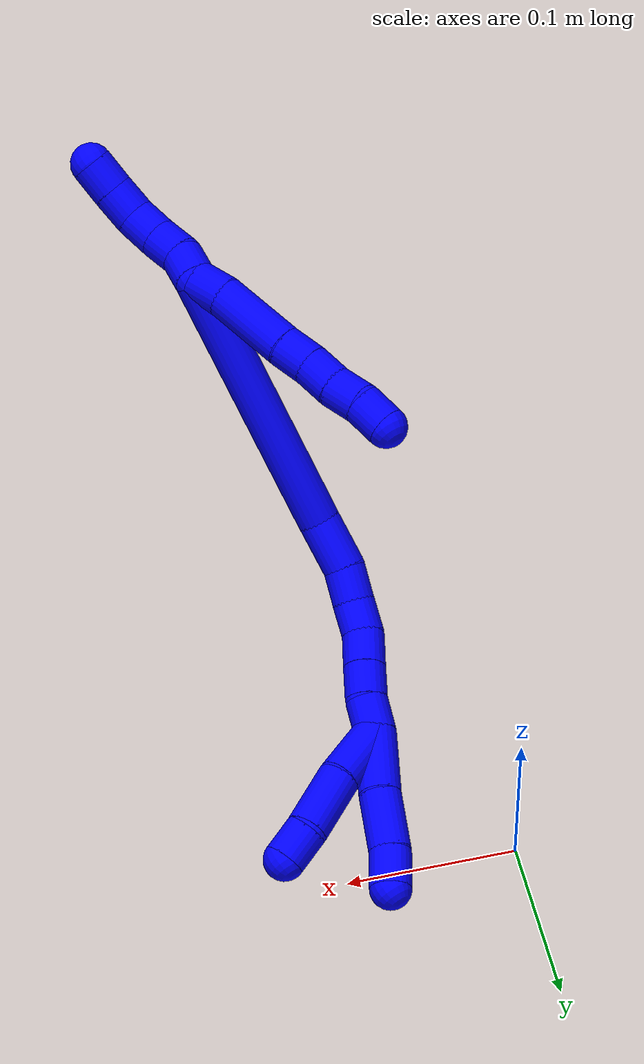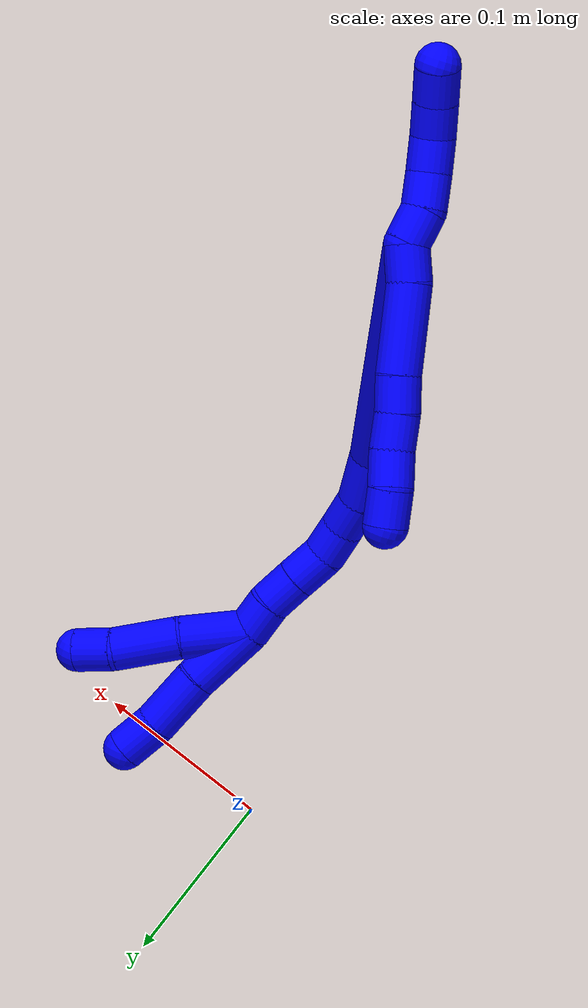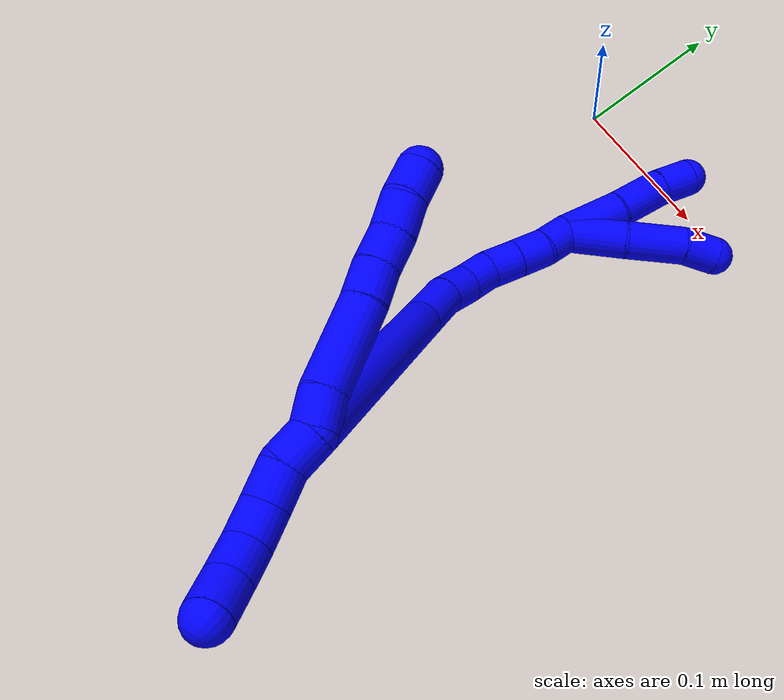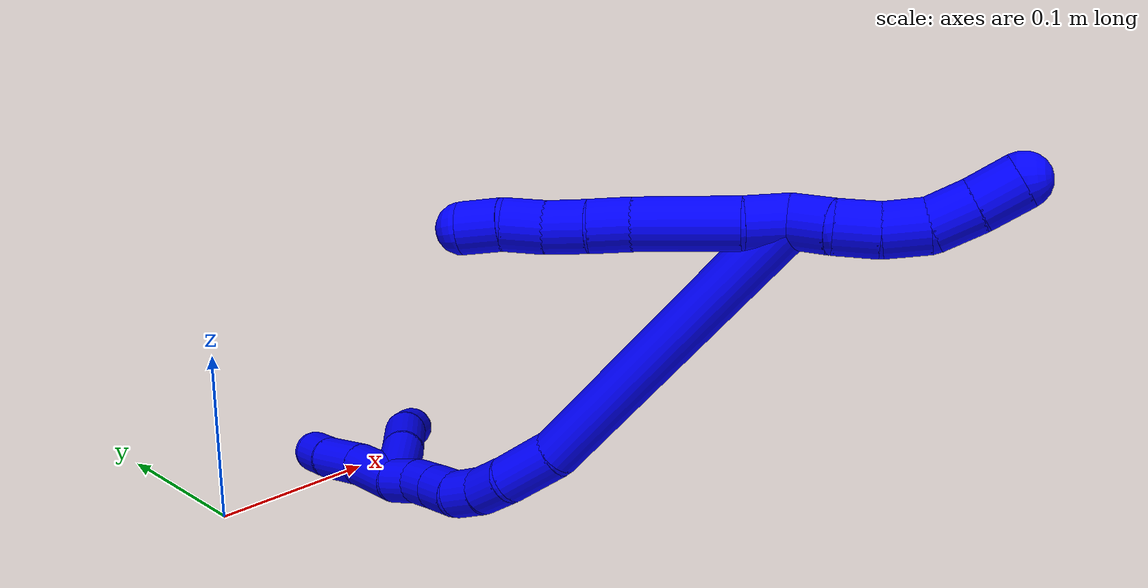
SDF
<sdf version="1.7">
 <world name="default">
  <model name="1">
   <static>0</static>
   <link name="1">
    <collision name="collision-cylinder-e_1_2_8">
     <pose>-0.000387 -0.004321 -0.009331 2.70786 -0.037593 -0.170226</pose>
     <geometry><cylinder><radius>0.0125</radius><length>0.02058</length></cylinder></geometry>
     <surface>
      <friction><ode><mu>1.16</mu><mu2>1.16</mu2><slip1>0</slip1><slip2>0</slip2></ode></friction>
      <contact><ode><kp>1e+06</kp><kd>1</kd><max_vel>0</max_vel><min_depth>0.001</min_depth></ode></contact>
     </surface>
    </collision>
    <visual name="visual-cylinder-e_1_2_8">
     <pose>-0.000387 -0.004321 -0.009331 2.70786 -0.037593 -0.170226</pose>
     <geometry><cylinder><radius>0.0125</radius><length>0.02058</length></cylinder></geometry>
     <material><ambient>0 0 1 1</ambient></material>
    </visual>
    <collision name="collision-cylinder-e_2_8_9">
     <pose>-0.003554 -0.014862 -0.042271 2.88403 -0.113416 -0.826299</pose>
     <geometry><cylinder><radius>0.0125</radius><length>0.049145</length></cylinder></geometry>
     <surface>
      <friction><ode><mu>1.16</mu><mu2>1.16</mu2><slip1>0</slip1><slip2>0</slip2></ode></friction>
      <contact><ode><kp>1e+06</kp><kd>1</kd><max_vel>0</max_vel><min_depth>0.001</min_depth></ode></contact>
     </surface>
    </collision>
    <visual name="visual-cylinder-e_2_8_9">
     <pose>-0.003554 -0.014862 -0.042271 2.88403 -0.113416 -0.826299</pose>
     <geometry><cylinder><radius>0.0125</radius><length>0.049145</length></cylinder></geometry>
     <material><ambient>0 0 1 1</ambient></material>
    </visual>
    <collision name="collision-cylinder-e_3_9_10">
     <pose>-0.006924 -0.024375 -0.075313 2.80562 -0.058863 -0.343774</pose>
     <geometry><cylinder><radius>0.0125</radius><length>0.020018</length></cylinder></geometry>
     <surface>
      <friction><ode><mu>1.16</mu><mu2>1.16</mu2><slip1>0</slip1><slip2>0</slip2></ode></friction>
      <contact><ode><kp>1e+06</kp><kd>1</kd><max_vel>0</max_vel><min_depth>0.001</min_depth></ode></contact>
     </surface>
    </collision>
    <visual name="visual-cylinder-e_3_9_10">
     <pose>-0.006924 -0.024375 -0.075313 2.80562 -0.058863 -0.343774</pose>
     <geometry><cylinder><radius>0.0125</radius><length>0.020018</length></cylinder></geometry>
     <material><ambient>0 0 1 1</ambient></material>
    </visual>
    <collision name="collision-cylinder-e_4_10_11">
     <pose>-0.008481 -0.029878 -0.094454 2.9179 -0.09689 -0.814994</pose>
     <geometry><cylinder><radius>0.0125</radius><length>0.020006</length></cylinder></geometry>
     <surface>
      <friction><ode><mu>1.16</mu><mu2>1.16</mu2><slip1>0</slip1><slip2>0</slip2></ode></friction>
      <contact><ode><kp>1e+06</kp><kd>1</kd><max_vel>0</max_vel><min_depth>0.001</min_depth></ode></contact>
     </surface>
    </collision>
    <visual name="visual-cylinder-e_4_10_11">
     <pose>-0.008481 -0.029878 -0.094454 2.9179 -0.09689 -0.814994</pose>
     <geometry><cylinder><radius>0.0125</radius><length>0.020006</length></cylinder></geometry>
     <material><ambient>0 0 1 1</ambient></material>
    </visual>
    <collision name="collision-cylinder-e_5_11_12">
     <pose>-0.011219 -0.035668 -0.113465 2.77414 -0.175794 -0.885659</pose>
     <geometry><cylinder><radius>0.0125</radius><length>0.02025</length></cylinder></geometry>
     <surface>
      <friction><ode><mu>1.16</mu><mu2>1.16</mu2><slip1>0</slip1><slip2>0</slip2></ode></friction>
      <contact><ode><kp>1e+06</kp><kd>1</kd><max_vel>0</max_vel><min_depth>0.001</min_depth></ode></contact>
     </surface>
    </collision>
    <visual name="visual-cylinder-e_5_11_12">
     <pose>-0.011219 -0.035668 -0.113465 2.77414 -0.175794 -0.885659</pose>
     <geometry><cylinder><radius>0.0125</radius><length>0.02025</length></cylinder></geometry>
     <material><ambient>0 0 1 1</ambient></material>
    </visual>
    <collision name="collision-cylinder-e_6_12_6">
     <pose>-0.01331 -0.041319 -0.132547 2.93293 -0.031981 -0.303097</pose>
     <geometry><cylinder><radius>0.0125</radius><length>0.020001</length></cylinder></geometry>
     <surface>
      <friction><ode><mu>1.16</mu><mu2>1.16</mu2><slip1>0</slip1><slip2>0</slip2></ode></friction>
      <contact><ode><kp>1e+06</kp><kd>1</kd><max_vel>0</max_vel><min_depth>0.001</min_depth></ode></contact>
     </surface>
    </collision>
    <visual name="visual-cylinder-e_6_12_6">
     <pose>-0.01331 -0.041319 -0.132547 2.93293 -0.031981 -0.303097</pose>
     <geometry><cylinder><radius>0.0125</radius><length>0.020001</length></cylinder></geometry>
     <material><ambient>0 0 1 1</ambient></material>
    </visual>
    <collision name="collision-cylinder-e_1_2_13">
     <pose>0.0027 -0.000665 0.009606 0.069071 0.273388 0.009505</pose>
     <geometry><cylinder><radius>0.0125</radius><length>0.02</length></cylinder></geometry>
     <surface>
      <friction><ode><mu>1.16</mu><mu2>1.16</mu2><slip1>0</slip1><slip2>0</slip2></ode></friction>
      <contact><ode><kp>1e+06</kp><kd>1</kd><max_vel>0</max_vel><min_depth>0.001</min_depth></ode></contact>
     </surface>
    </collision>
    <visual name="visual-cylinder-e_1_2_13">
     <pose>0.0027 -0.000665 0.009606 0.069071 0.273388 0.009505</pose>
     <geometry><cylinder><radius>0.0125</radius><length>0.02</length></cylinder></geometry>
     <material><ambient>0 0 1 1</ambient></material>
    </visual>
    <collision name="collision-cylinder-e_2_13_14">
     <pose>0.007314 0.001256 0.02868 -0.26656 0.192565 -0.025897</pose>
     <geometry><cylinder><radius>0.0125</radius><length>0.02</length></cylinder></geometry>
     <surface>
      <friction><ode><mu>1.16</mu><mu2>1.16</mu2><slip1>0</slip1><slip2>0</slip2></ode></friction>
      <contact><ode><kp>1e+06</kp><kd>1</kd><max_vel>0</max_vel><min_depth>0.001</min_depth></ode></contact>
     </surface>
    </collision>
    <visual name="visual-cylinder-e_2_13_14">
     <pose>0.007314 0.001256 0.02868 -0.26656 0.192565 -0.025897</pose>
     <geometry><cylinder><radius>0.0125</radius><length>0.02</length></cylinder></geometry>
     <material><ambient>0 0 1 1</ambient></material>
    </visual>
    <collision name="collision-cylinder-e_3_14_15">
     <pose>0.009433 0.006138 0.047879 -0.231707 0.02059 -0.002396</pose>
     <geometry><cylinder><radius>0.0125</radius><length>0.02</length></cylinder></geometry>
     <surface>
      <friction><ode><mu>1.16</mu><mu2>1.16</mu2><slip1>0</slip1><slip2>0</slip2></ode></friction>
      <contact><ode><kp>1e+06</kp><kd>1</kd><max_vel>0</max_vel><min_depth>0.001</min_depth></ode></contact>
     </surface>
    </collision>
    <visual name="visual-cylinder-e_3_14_15">
     <pose>0.009433 0.006138 0.047879 -0.231707 0.02059 -0.002396</pose>
     <geometry><cylinder><radius>0.0125</radius><length>0.02</length></cylinder></geometry>
     <material><ambient>0 0 1 1</ambient></material>
    </visual>
    <collision name="collision-cylinder-e_4_15_16">
     <pose>0.006567 0.009843 0.067021 -0.148635 -0.312245 0.023438</pose>
     <geometry><cylinder><radius>0.0125</radius><length>0.02</length></cylinder></geometry>
     <surface>
      <friction><ode><mu>1.16</mu><mu2>1.16</mu2><slip1>0</slip1><slip2>0</slip2></ode></friction>
      <contact><ode><kp>1e+06</kp><kd>1</kd><max_vel>0</max_vel><min_depth>0.001</min_depth></ode></contact>
     </surface>
    </collision>
    <visual name="visual-cylinder-e_4_15_16">
     <pose>0.006567 0.009843 0.067021 -0.148635 -0.312245 0.023438</pose>
     <geometry><cylinder><radius>0.0125</radius><length>0.02</length></cylinder></geometry>
     <material><ambient>0 0 1 1</ambient></material>
    </visual>
    <collision name="collision-cylinder-e_5_16_5">
     <pose>-0.000364 0.012395 0.085587 -0.124194 -0.39627 0.024965</pose>
     <geometry><cylinder><radius>0.0125</radius><length>0.02</length></cylinder></geometry>
     <surface>
      <friction><ode><mu>1.16</mu><mu2>1.16</mu2><slip1>0</slip1><slip2>0</slip2></ode></friction>
      <contact><ode><kp>1e+06</kp><kd>1</kd><max_vel>0</max_vel><min_depth>0.001</min_depth></ode></contact>
     </surface>
    </collision>
    <visual name="visual-cylinder-e_5_16_5">
     <pose>-0.000364 0.012395 0.085587 -0.124194 -0.39627 0.024965</pose>
     <geometry><cylinder><radius>0.0125</radius><length>0.02</length></cylinder></geometry>
     <material><ambient>0 0 1 1</ambient></material>
    </visual>
    <collision name="collision-cylinder-e_1_2_17">
     <pose>0.047799 0.005786 -0.066078 -3.05425 0.624426 -2.87246</pose>
     <geometry><cylinder><radius>0.0125</radius><length>0.163517</length></cylinder></geometry>
     <surface>
      <friction><ode><mu>1.16</mu><mu2>1.16</mu2><slip1>0</slip1><slip2>0</slip2></ode></friction>
      <contact><ode><kp>1e+06</kp><kd>1</kd><max_vel>0</max_vel><min_depth>0.001</min_depth></ode></contact>
     </surface>
    </collision>
    <visual name="visual-cylinder-e_1_2_17">
     <pose>0.047799 0.005786 -0.066078 -3.05425 0.624426 -2.87246</pose>
     <geometry><cylinder><radius>0.0125</radius><length>0.163517</length></cylinder></geometry>
     <material><ambient>0 0 1 1</ambient></material>
    </visual>
    <collision name="collision-cylinder-e_2_17_18">
     <pose>0.101491 0.012711 -0.146871 -3.06434 0.379887 -2.74489</pose>
     <geometry><cylinder><radius>0.0125</radius><length>0.031786</length></cylinder></geometry>
     <surface>
      <friction><ode><mu>1.16</mu><mu2>1.16</mu2><slip1>0</slip1><slip2>0</slip2></ode></friction>
      <contact><ode><kp>1e+06</kp><kd>1</kd><max_vel>0</max_vel><min_depth>0.001</min_depth></ode></contact>
     </surface>
    </collision>
    <visual name="visual-cylinder-e_2_17_18">
     <pose>0.101491 0.012711 -0.146871 -3.06434 0.379887 -2.74489</pose>
     <geometry><cylinder><radius>0.0125</radius><length>0.031786</length></cylinder></geometry>
     <material><ambient>0 0 1 1</ambient></material>
    </visual>
    <collision name="collision-cylinder-e_3_18_19">
     <pose>0.110189 0.017013 -0.171336 -2.82784 0.267187 -1.4086</pose>
     <geometry><cylinder><radius>0.0125</radius><length>0.021252</length></cylinder></geometry>
     <surface>
      <friction><ode><mu>1.16</mu><mu2>1.16</mu2><slip1>0</slip1><slip2>0</slip2></ode></friction>
      <contact><ode><kp>1e+06</kp><kd>1</kd><max_vel>0</max_vel><min_depth>0.001</min_depth></ode></contact>
     </surface>
    </collision>
    <visual name="visual-cylinder-e_3_18_19">
     <pose>0.110189 0.017013 -0.171336 -2.82784 0.267187 -1.4086</pose>
     <geometry><cylinder><radius>0.0125</radius><length>0.021252</length></cylinder></geometry>
     <material><ambient>0 0 1 1</ambient></material>
    </visual>
    <collision name="collision-cylinder-e_4_19_20">
     <pose>0.113787 0.022985 -0.190777 -2.85957 0.078376 -0.538974</pose>
     <geometry><cylinder><radius>0.0125</radius><length>0.020243</length></cylinder></geometry>
     <surface>
      <friction><ode><mu>1.16</mu><mu2>1.16</mu2><slip1>0</slip1><slip2>0</slip2></ode></friction>
      <contact><ode><kp>1e+06</kp><kd>1</kd><max_vel>0</max_vel><min_depth>0.001</min_depth></ode></contact>
     </surface>
    </collision>
    <visual name="visual-cylinder-e_4_19_20">
     <pose>0.113787 0.022985 -0.190777 -2.85957 0.078376 -0.538974</pose>
     <geometry><cylinder><radius>0.0125</radius><length>0.020243</length></cylinder></geometry>
     <material><ambient>0 0 1 1</ambient></material>
    </visual>
    <collision name="collision-cylinder-e_5_20_21">
     <pose>0.112733 0.030885 -0.209786 -2.64145 -0.172195 0.651741</pose>
     <geometry><cylinder><radius>0.0125</radius><length>0.021555</length></cylinder></geometry>
     <surface>
      <friction><ode><mu>1.16</mu><mu2>1.16</mu2><slip1>0</slip1><slip2>0</slip2></ode></friction>
      <contact><ode><kp>1e+06</kp><kd>1</kd><max_vel>0</max_vel><min_depth>0.001</min_depth></ode></contact>
     </surface>
    </collision>
    <visual name="visual-cylinder-e_5_20_21">
     <pose>0.112733 0.030885 -0.209786 -2.64145 -0.172195 0.651741</pose>
     <geometry><cylinder><radius>0.0125</radius><length>0.021555</length></cylinder></geometry>
     <material><ambient>0 0 1 1</ambient></material>
    </visual>
    <collision name="collision-cylinder-e_6_21_22">
     <pose>0.10926 0.040749 -0.228179 -2.65746 -0.157312 0.617992</pose>
     <geometry><cylinder><radius>0.0125</radius><length>0.020765</length></cylinder></geometry>
     <surface>
      <friction><ode><mu>1.16</mu><mu2>1.16</mu2><slip1>0</slip1><slip2>0</slip2></ode></friction>
      <contact><ode><kp>1e+06</kp><kd>1</kd><max_vel>0</max_vel><min_depth>0.001</min_depth></ode></contact>
     </surface>
    </collision>
    <visual name="visual-cylinder-e_6_21_22">
     <pose>0.10926 0.040749 -0.228179 -2.65746 -0.157312 0.617992</pose>
     <geometry><cylinder><radius>0.0125</radius><length>0.020765</length></cylinder></geometry>
     <material><ambient>0 0 1 1</ambient></material>
    </visual>
    <collision name="collision-cylinder-e_7_22_1">
     <pose>0.107223 0.048657 -0.247206 -2.83642 -0.039333 0.254426</pose>
     <geometry><cylinder><radius>0.0125</radius><length>0.020882</length></cylinder></geometry>
     <surface>
      <friction><ode><mu>1.16</mu><mu2>1.16</mu2><slip1>0</slip1><slip2>0</slip2></ode></friction>
      <contact><ode><kp>1e+06</kp><kd>1</kd><max_vel>0</max_vel><min_depth>0.001</min_depth></ode></contact>
     </surface>
    </collision>
    <visual name="visual-cylinder-e_7_22_1">
     <pose>0.107223 0.048657 -0.247206 -2.83642 -0.039333 0.254426</pose>
     <geometry><cylinder><radius>0.0125</radius><length>0.020882</length></cylinder></geometry>
     <material><ambient>0 0 1 1</ambient></material>
    </visual>
    <collision name="collision-cylinder-e_1_1_23">
     <pose>0.098907 0.068068 -0.264903 -2.01497 -0.413317 0.641013</pose>
     <geometry><cylinder><radius>0.0125</radius><length>0.039366</length></cylinder></geometry>
     <surface>
      <friction><ode><mu>1.16</mu><mu2>1.16</mu2><slip1>0</slip1><slip2>0</slip2></ode></friction>
      <contact><ode><kp>1e+06</kp><kd>1</kd><max_vel>0</max_vel><min_depth>0.001</min_depth></ode></contact>
     </surface>
    </collision>
    <visual name="visual-cylinder-e_1_1_23">
     <pose>0.098907 0.068068 -0.264903 -2.01497 -0.413317 0.641013</pose>
     <geometry><cylinder><radius>0.0125</radius><length>0.039366</length></cylinder></geometry>
     <material><ambient>0 0 1 1</ambient></material>
    </visual>
    <collision name="collision-cylinder-e_2_23_24">
     <pose>0.085524 0.100325 -0.28204 -2.10212 -0.287287 0.495172</pose>
     <geometry><cylinder><radius>0.0125</radius><length>0.038656</length></cylinder></geometry>
     <surface>
      <friction><ode><mu>1.16</mu><mu2>1.16</mu2><slip1>0</slip1><slip2>0</slip2></ode></friction>
      <contact><ode><kp>1e+06</kp><kd>1</kd><max_vel>0</max_vel><min_depth>0.001</min_depth></ode></contact>
     </surface>
    </collision>
    <visual name="visual-cylinder-e_2_23_24">
     <pose>0.085524 0.100325 -0.28204 -2.10212 -0.287287 0.495172</pose>
     <geometry><cylinder><radius>0.0125</radius><length>0.038656</length></cylinder></geometry>
     <material><ambient>0 0 1 1</ambient></material>
    </visual>
    <collision name="collision-cylinder-e_3_24_4">
     <pose>0.079054 0.126397 -0.295666 -1.96809 -0.090568 0.136104</pose>
     <geometry><cylinder><radius>0.0125</radius><length>0.021978</length></cylinder></geometry>
     <surface>
      <friction><ode><mu>1.16</mu><mu2>1.16</mu2><slip1>0</slip1><slip2>0</slip2></ode></friction>
      <contact><ode><kp>1e+06</kp><kd>1</kd><max_vel>0</max_vel><min_depth>0.001</min_depth></ode></contact>
     </surface>
    </collision>
    <visual name="visual-cylinder-e_3_24_4">
     <pose>0.079054 0.126397 -0.295666 -1.96809 -0.090568 0.136104</pose>
     <geometry><cylinder><radius>0.0125</radius><length>0.021978</length></cylinder></geometry>
     <material><ambient>0 0 1 1</ambient></material>
    </visual>
    <collision name="collision-cylinder-e_1_1_25">
     <pose>0.102034 0.060608 -0.274965 -2.68188 -0.236006 0.93792</pose>
     <geometry><cylinder><radius>0.0125</radius><length>0.040875</length></cylinder></geometry>
     <surface>
      <friction><ode><mu>1.16</mu><mu2>1.16</mu2><slip1>0</slip1><slip2>0</slip2></ode></friction>
      <contact><ode><kp>1e+06</kp><kd>1</kd><max_vel>0</max_vel><min_depth>0.001</min_depth></ode></contact>
     </surface>
    </collision>
    <visual name="visual-cylinder-e_1_1_25">
     <pose>0.102034 0.060608 -0.274965 -2.68188 -0.236006 0.93792</pose>
     <geometry><cylinder><radius>0.0125</radius><length>0.040875</length></cylinder></geometry>
     <material><ambient>0 0 1 1</ambient></material>
    </visual>
    <collision name="collision-cylinder-e_2_25_26">
     <pose>0.094732 0.075946 -0.309188 -2.76344 -0.141846 0.710947</pose>
     <geometry><cylinder><radius>0.0125</radius><length>0.035685</length></cylinder></geometry>
     <surface>
      <friction><ode><mu>1.16</mu><mu2>1.16</mu2><slip1>0</slip1><slip2>0</slip2></ode></friction>
      <contact><ode><kp>1e+06</kp><kd>1</kd><max_vel>0</max_vel><min_depth>0.001</min_depth></ode></contact>
     </surface>
    </collision>
    <visual name="visual-cylinder-e_2_25_26">
     <pose>0.094732 0.075946 -0.309188 -2.76344 -0.141846 0.710947</pose>
     <geometry><cylinder><radius>0.0125</radius><length>0.035685</length></cylinder></geometry>
     <material><ambient>0 0 1 1</ambient></material>
    </visual>
    <collision name="collision-cylinder-e_3_26_3">
     <pose>0.090132 0.088247 -0.335585 -2.61674 -0.178245 0.642288</pose>
     <geometry><cylinder><radius>0.0125</radius><length>0.02344</length></cylinder></geometry>
     <surface>
      <friction><ode><mu>1.16</mu><mu2>1.16</mu2><slip1>0</slip1><slip2>0</slip2></ode></friction>
      <contact><ode><kp>1e+06</kp><kd>1</kd><max_vel>0</max_vel><min_depth>0.001</min_depth></ode></contact>
     </surface>
    </collision>
    <visual name="visual-cylinder-e_3_26_3">
     <pose>0.090132 0.088247 -0.335585 -2.61674 -0.178245 0.642288</pose>
     <geometry><cylinder><radius>0.0125</radius><length>0.02344</length></cylinder></geometry>
     <material><ambient>0 0 1 1</ambient></material>
    </visual>
    <collision name="collision-sphere-3">
     <pose>0.088054 0.094027 -0.345567 0 -0 0</pose>
     <geometry><sphere><radius>0.0125</radius></sphere></geometry>
     <surface>
      <friction><ode><mu>1.16</mu><mu2>1.16</mu2><slip1>0</slip1><slip2>0</slip2></ode></friction>
      <contact><ode><kp>1e+06</kp><kd>1</kd><max_vel>0</max_vel><min_depth>0.001</min_depth></ode></contact>
     </surface>
    </collision>
    <visual name="visual-sphere-3">
     <pose>0.088054 0.094027 -0.345567 0 -0 0</pose>
     <geometry><sphere><radius>0.0125</radius></sphere></geometry>
     <material><ambient>0 0 1 1</ambient></material>
    </visual>
    <collision name="collision-sphere-26">
     <pose>0.09221 0.082467 -0.325603 0 -0 0</pose>
     <geometry><sphere><radius>0.0125</radius></sphere></geometry>
     <surface>
      <friction><ode><mu>1.16</mu><mu2>1.16</mu2><slip1>0</slip1><slip2>0</slip2></ode></friction>
      <contact><ode><kp>1e+06</kp><kd>1</kd><max_vel>0</max_vel><min_depth>0.001</min_depth></ode></contact>
     </surface>
    </collision>
    <visual name="visual-sphere-26">
     <pose>0.09221 0.082467 -0.325603 0 -0 0</pose>
     <geometry><sphere><radius>0.0125</radius></sphere></geometry>
     <material><ambient>0 0 1 1</ambient></material>
    </visual>
    <collision name="collision-sphere-25">
     <pose>0.097255 0.069424 -0.292773 0 -0 0</pose>
     <geometry><sphere><radius>0.0125</radius></sphere></geometry>
     <surface>
      <friction><ode><mu>1.16</mu><mu2>1.16</mu2><slip1>0</slip1><slip2>0</slip2></ode></friction>
      <contact><ode><kp>1e+06</kp><kd>1</kd><max_vel>0</max_vel><min_depth>0.001</min_depth></ode></contact>
     </surface>
    </collision>
    <visual name="visual-sphere-25">
     <pose>0.097255 0.069424 -0.292773 0 -0 0</pose>
     <geometry><sphere><radius>0.0125</radius></sphere></geometry>
     <material><ambient>0 0 1 1</ambient></material>
    </visual>
    <collision name="collision-sphere-4">
     <pose>0.07806 0.136488 -0.2999 0 -0 0</pose>
     <geometry><sphere><radius>0.0125</radius></sphere></geometry>
     <surface>
      <friction><ode><mu>1.16</mu><mu2>1.16</mu2><slip1>0</slip1><slip2>0</slip2></ode></friction>
      <contact><ode><kp>1e+06</kp><kd>1</kd><max_vel>0</max_vel><min_depth>0.001</min_depth></ode></contact>
     </surface>
    </collision>
    <visual name="visual-sphere-4">
     <pose>0.07806 0.136488 -0.2999 0 -0 0</pose>
     <geometry><sphere><radius>0.0125</radius></sphere></geometry>
     <material><ambient>0 0 1 1</ambient></material>
    </visual>
    <collision name="collision-sphere-24">
     <pose>0.080048 0.116306 -0.291432 0 -0 0</pose>
     <geometry><sphere><radius>0.0125</radius></sphere></geometry>
     <surface>
      <friction><ode><mu>1.16</mu><mu2>1.16</mu2><slip1>0</slip1><slip2>0</slip2></ode></friction>
      <contact><ode><kp>1e+06</kp><kd>1</kd><max_vel>0</max_vel><min_depth>0.001</min_depth></ode></contact>
     </surface>
    </collision>
    <visual name="visual-sphere-24">
     <pose>0.080048 0.116306 -0.291432 0 -0 0</pose>
     <geometry><sphere><radius>0.0125</radius></sphere></geometry>
     <material><ambient>0 0 1 1</ambient></material>
    </visual>
    <collision name="collision-sphere-23">
     <pose>0.091001 0.084345 -0.272648 0 -0 0</pose>
     <geometry><sphere><radius>0.0125</radius></sphere></geometry>
     <surface>
      <friction><ode><mu>1.16</mu><mu2>1.16</mu2><slip1>0</slip1><slip2>0</slip2></ode></friction>
      <contact><ode><kp>1e+06</kp><kd>1</kd><max_vel>0</max_vel><min_depth>0.001</min_depth></ode></contact>
     </surface>
    </collision>
    <visual name="visual-sphere-23">
     <pose>0.091001 0.084345 -0.272648 0 -0 0</pose>
     <geometry><sphere><radius>0.0125</radius></sphere></geometry>
     <material><ambient>0 0 1 1</ambient></material>
    </visual>
    <collision name="collision-sphere-1">
     <pose>0.106812 0.051791 -0.257157 0 -0 0</pose>
     <geometry><sphere><radius>0.0125</radius></sphere></geometry>
     <surface>
      <friction><ode><mu>1.16</mu><mu2>1.16</mu2><slip1>0</slip1><slip2>0</slip2></ode></friction>
      <contact><ode><kp>1e+06</kp><kd>1</kd><max_vel>0</max_vel><min_depth>0.001</min_depth></ode></contact>
     </surface>
    </collision>
    <visual name="visual-sphere-1">
     <pose>0.106812 0.051791 -0.257157 0 -0 0</pose>
     <geometry><sphere><radius>0.0125</radius></sphere></geometry>
     <material><ambient>0 0 1 1</ambient></material>
    </visual>
    <collision name="collision-sphere-22">
     <pose>0.107633 0.045522 -0.237255 0 -0 0</pose>
     <geometry><sphere><radius>0.0125</radius></sphere></geometry>
     <surface>
      <friction><ode><mu>1.16</mu><mu2>1.16</mu2><slip1>0</slip1><slip2>0</slip2></ode></friction>
      <contact><ode><kp>1e+06</kp><kd>1</kd><max_vel>0</max_vel><min_depth>0.001</min_depth></ode></contact>
     </surface>
    </collision>
    <visual name="visual-sphere-22">
     <pose>0.107633 0.045522 -0.237255 0 -0 0</pose>
     <geometry><sphere><radius>0.0125</radius></sphere></geometry>
     <material><ambient>0 0 1 1</ambient></material>
    </visual>
    <collision name="collision-sphere-21">
     <pose>0.110887 0.035977 -0.219104 0 -0 0</pose>
     <geometry><sphere><radius>0.0125</radius></sphere></geometry>
     <surface>
      <friction><ode><mu>1.16</mu><mu2>1.16</mu2><slip1>0</slip1><slip2>0</slip2></ode></friction>
      <contact><ode><kp>1e+06</kp><kd>1</kd><max_vel>0</max_vel><min_depth>0.001</min_depth></ode></contact>
     </surface>
    </collision>
    <visual name="visual-sphere-21">
     <pose>0.110887 0.035977 -0.219104 0 -0 0</pose>
     <geometry><sphere><radius>0.0125</radius></sphere></geometry>
     <material><ambient>0 0 1 1</ambient></material>
    </visual>
    <collision name="collision-sphere-12">
     <pose>-0.01299 -0.039249 -0.122769 0 -0 0</pose>
     <geometry><sphere><radius>0.0125</radius></sphere></geometry>
     <surface>
      <friction><ode><mu>1.16</mu><mu2>1.16</mu2><slip1>0</slip1><slip2>0</slip2></ode></friction>
      <contact><ode><kp>1e+06</kp><kd>1</kd><max_vel>0</max_vel><min_depth>0.001</min_depth></ode></contact>
     </surface>
    </collision>
    <visual name="visual-sphere-12">
     <pose>-0.01299 -0.039249 -0.122769 0 -0 0</pose>
     <geometry><sphere><radius>0.0125</radius></sphere></geometry>
     <material><ambient>0 0 1 1</ambient></material>
    </visual>
    <collision name="collision-sphere-11">
     <pose>-0.009448 -0.032086 -0.104162 0 -0 0</pose>
     <geometry><sphere><radius>0.0125</radius></sphere></geometry>
     <surface>
      <friction><ode><mu>1.16</mu><mu2>1.16</mu2><slip1>0</slip1><slip2>0</slip2></ode></friction>
      <contact><ode><kp>1e+06</kp><kd>1</kd><max_vel>0</max_vel><min_depth>0.001</min_depth></ode></contact>
     </surface>
    </collision>
    <visual name="visual-sphere-11">
     <pose>-0.009448 -0.032086 -0.104162 0 -0 0</pose>
     <geometry><sphere><radius>0.0125</radius></sphere></geometry>
     <material><ambient>0 0 1 1</ambient></material>
    </visual>
    <collision name="collision-sphere-10">
     <pose>-0.007513 -0.027669 -0.084746 0 -0 0</pose>
     <geometry><sphere><radius>0.0125</radius></sphere></geometry>
     <surface>
      <friction><ode><mu>1.16</mu><mu2>1.16</mu2><slip1>0</slip1><slip2>0</slip2></ode></friction>
      <contact><ode><kp>1e+06</kp><kd>1</kd><max_vel>0</max_vel><min_depth>0.001</min_depth></ode></contact>
     </surface>
    </collision>
    <visual name="visual-sphere-10">
     <pose>-0.007513 -0.027669 -0.084746 0 -0 0</pose>
     <geometry><sphere><radius>0.0125</radius></sphere></geometry>
     <material><ambient>0 0 1 1</ambient></material>
    </visual>
    <collision name="collision-sphere-9">
     <pose>-0.006335 -0.021081 -0.06588 0 -0 0</pose>
     <geometry><sphere><radius>0.0125</radius></sphere></geometry>
     <surface>
      <friction><ode><mu>1.16</mu><mu2>1.16</mu2><slip1>0</slip1><slip2>0</slip2></ode></friction>
      <contact><ode><kp>1e+06</kp><kd>1</kd><max_vel>0</max_vel><min_depth>0.001</min_depth></ode></contact>
     </surface>
    </collision>
    <visual name="visual-sphere-9">
     <pose>-0.006335 -0.021081 -0.06588 0 -0 0</pose>
     <geometry><sphere><radius>0.0125</radius></sphere></geometry>
     <material><ambient>0 0 1 1</ambient></material>
    </visual>
    <collision name="collision-sphere-2">
     <geometry><sphere><radius>0.0125</radius></sphere></geometry>
     <surface>
      <friction><ode><mu>1.16</mu><mu2>1.16</mu2><slip1>0</slip1><slip2>0</slip2></ode></friction>
      <contact><ode><kp>1e+06</kp><kd>1</kd><max_vel>0</max_vel><min_depth>0.001</min_depth></ode></contact>
     </surface>
    </collision>
    <visual name="visual-sphere-2">
     <geometry><sphere><radius>0.0125</radius></sphere></geometry>
     <material><ambient>0 0 1 1</ambient></material>
    </visual>
    <collision name="collision-sphere-19">
     <pose>0.112995 0.020176 -0.181085 0 -0 0</pose>
     <geometry><sphere><radius>0.0125</radius></sphere></geometry>
     <surface>
      <friction><ode><mu>1.16</mu><mu2>1.16</mu2><slip1>0</slip1><slip2>0</slip2></ode></friction>
      <contact><ode><kp>1e+06</kp><kd>1</kd><max_vel>0</max_vel><min_depth>0.001</min_depth></ode></contact>
     </surface>
    </collision>
    <visual name="visual-sphere-19">
     <pose>0.112995 0.020176 -0.181085 0 -0 0</pose>
     <geometry><sphere><radius>0.0125</radius></sphere></geometry>
     <material><ambient>0 0 1 1</ambient></material>
    </visual>
    <collision name="collision-sphere-8">
     <pose>-0.000773 -0.008643 -0.018661 0 -0 0</pose>
     <geometry><sphere><radius>0.0125</radius></sphere></geometry>
     <surface>
      <friction><ode><mu>1.16</mu><mu2>1.16</mu2><slip1>0</slip1><slip2>0</slip2></ode></friction>
      <contact><ode><kp>1e+06</kp><kd>1</kd><max_vel>0</max_vel><min_depth>0.001</min_depth></ode></contact>
     </surface>
    </collision>
    <visual name="visual-sphere-8">
     <pose>-0.000773 -0.008643 -0.018661 0 -0 0</pose>
     <geometry><sphere><radius>0.0125</radius></sphere></geometry>
     <material><ambient>0 0 1 1</ambient></material>
    </visual>
    <collision name="collision-sphere-6">
     <pose>-0.013629 -0.04339 -0.142326 0 -0 0</pose>
     <geometry><sphere><radius>0.0125</radius></sphere></geometry>
     <surface>
      <friction><ode><mu>1.16</mu><mu2>1.16</mu2><slip1>0</slip1><slip2>0</slip2></ode></friction>
      <contact><ode><kp>1e+06</kp><kd>1</kd><max_vel>0</max_vel><min_depth>0.001</min_depth></ode></contact>
     </surface>
    </collision>
    <visual name="visual-sphere-6">
     <pose>-0.013629 -0.04339 -0.142326 0 -0 0</pose>
     <geometry><sphere><radius>0.0125</radius></sphere></geometry>
     <material><ambient>0 0 1 1</ambient></material>
    </visual>
    <collision name="collision-sphere-13">
     <pose>0.0054 -0.001329 0.019211 0 -0 0</pose>
     <geometry><sphere><radius>0.0125</radius></sphere></geometry>
     <surface>
      <friction><ode><mu>1.16</mu><mu2>1.16</mu2><slip1>0</slip1><slip2>0</slip2></ode></friction>
      <contact><ode><kp>1e+06</kp><kd>1</kd><max_vel>0</max_vel><min_depth>0.001</min_depth></ode></contact>
     </surface>
    </collision>
    <visual name="visual-sphere-13">
     <pose>0.0054 -0.001329 0.019211 0 -0 0</pose>
     <geometry><sphere><radius>0.0125</radius></sphere></geometry>
     <material><ambient>0 0 1 1</ambient></material>
    </visual>
    <collision name="collision-sphere-14">
     <pose>0.009227 0.003842 0.038148 0 -0 0</pose>
     <geometry><sphere><radius>0.0125</radius></sphere></geometry>
     <surface>
      <friction><ode><mu>1.16</mu><mu2>1.16</mu2><slip1>0</slip1><slip2>0</slip2></ode></friction>
      <contact><ode><kp>1e+06</kp><kd>1</kd><max_vel>0</max_vel><min_depth>0.001</min_depth></ode></contact>
     </surface>
    </collision>
    <visual name="visual-sphere-14">
     <pose>0.009227 0.003842 0.038148 0 -0 0</pose>
     <geometry><sphere><radius>0.0125</radius></sphere></geometry>
     <material><ambient>0 0 1 1</ambient></material>
    </visual>
    <collision name="collision-sphere-15">
     <pose>0.009639 0.008434 0.05761 0 -0 0</pose>
     <geometry><sphere><radius>0.0125</radius></sphere></geometry>
     <surface>
      <friction><ode><mu>1.16</mu><mu2>1.16</mu2><slip1>0</slip1><slip2>0</slip2></ode></friction>
      <contact><ode><kp>1e+06</kp><kd>1</kd><max_vel>0</max_vel><min_depth>0.001</min_depth></ode></contact>
     </surface>
    </collision>
    <visual name="visual-sphere-15">
     <pose>0.009639 0.008434 0.05761 0 -0 0</pose>
     <geometry><sphere><radius>0.0125</radius></sphere></geometry>
     <material><ambient>0 0 1 1</ambient></material>
    </visual>
    <collision name="collision-sphere-16">
     <pose>0.003495 0.011252 0.076433 0 -0 0</pose>
     <geometry><sphere><radius>0.0125</radius></sphere></geometry>
     <surface>
      <friction><ode><mu>1.16</mu><mu2>1.16</mu2><slip1>0</slip1><slip2>0</slip2></ode></friction>
      <contact><ode><kp>1e+06</kp><kd>1</kd><max_vel>0</max_vel><min_depth>0.001</min_depth></ode></contact>
     </surface>
    </collision>
    <visual name="visual-sphere-16">
     <pose>0.003495 0.011252 0.076433 0 -0 0</pose>
     <geometry><sphere><radius>0.0125</radius></sphere></geometry>
     <material><ambient>0 0 1 1</ambient></material>
    </visual>
    <collision name="collision-sphere-5">
     <pose>-0.004224 0.013538 0.094741 0 -0 0</pose>
     <geometry><sphere><radius>0.0125</radius></sphere></geometry>
     <surface>
      <friction><ode><mu>1.16</mu><mu2>1.16</mu2><slip1>0</slip1><slip2>0</slip2></ode></friction>
      <contact><ode><kp>1e+06</kp><kd>1</kd><max_vel>0</max_vel><min_depth>0.001</min_depth></ode></contact>
     </surface>
    </collision>
    <visual name="visual-sphere-5">
     <pose>-0.004224 0.013538 0.094741 0 -0 0</pose>
     <geometry><sphere><radius>0.0125</radius></sphere></geometry>
     <material><ambient>0 0 1 1</ambient></material>
    </visual>
    <collision name="collision-sphere-17">
     <pose>0.095597 0.011572 -0.132155 0 -0 0</pose>
     <geometry><sphere><radius>0.0125</radius></sphere></geometry>
     <surface>
      <friction><ode><mu>1.16</mu><mu2>1.16</mu2><slip1>0</slip1><slip2>0</slip2></ode></friction>
      <contact><ode><kp>1e+06</kp><kd>1</kd><max_vel>0</max_vel><min_depth>0.001</min_depth></ode></contact>
     </surface>
    </collision>
    <visual name="visual-sphere-17">
     <pose>0.095597 0.011572 -0.132155 0 -0 0</pose>
     <geometry><sphere><radius>0.0125</radius></sphere></geometry>
     <material><ambient>0 0 1 1</ambient></material>
    </visual>
    <collision name="collision-sphere-18">
     <pose>0.107384 0.01385 -0.161587 0 -0 0</pose>
     <geometry><sphere><radius>0.0125</radius></sphere></geometry>
     <surface>
      <friction><ode><mu>1.16</mu><mu2>1.16</mu2><slip1>0</slip1><slip2>0</slip2></ode></friction>
      <contact><ode><kp>1e+06</kp><kd>1</kd><max_vel>0</max_vel><min_depth>0.001</min_depth></ode></contact>
     </surface>
    </collision>
    <visual name="visual-sphere-18">
     <pose>0.107384 0.01385 -0.161587 0 -0 0</pose>
     <geometry><sphere><radius>0.0125</radius></sphere></geometry>
     <material><ambient>0 0 1 1</ambient></material>
    </visual>
    <collision name="collision-sphere-20">
     <pose>0.11458 0.025793 -0.200469 0 -0 0</pose>
     <geometry><sphere><radius>0.0125</radius></sphere></geometry>
     <surface>
      <friction><ode><mu>1.16</mu><mu2>1.16</mu2><slip1>0</slip1><slip2>0</slip2></ode></friction>
      <contact><ode><kp>1e+06</kp><kd>1</kd><max_vel>0</max_vel><min_depth>0.001</min_depth></ode></contact>
     </surface>
    </collision>
    <visual name="visual-sphere-20">
     <pose>0.11458 0.025793 -0.200469 0 -0 0</pose>
     <geometry><sphere><radius>0.0125</radius></sphere></geometry>
     <material><ambient>0 0 1 1</ambient></material>
    </visual>
    <inertial>
     <pose>0.054339 0.024563 -0.134941 0 -0 0</pose>
     <mass>0.75</mass>
     <inertia>
      <ixx>-0.000318</ixx>
      <ixy>0</ixy>
      <ixz>0</ixz>
      <iyy>0.000277</iyy>
      <iyz>0</iyz>
      <izz>-0.000286</izz>
     </inertia>
    </inertial>
   </link>
   <pose>0.121449 -0.290232 0.211449 -0.847989 1.16081 -2.12154</pose>
  </model>
 </world>
</sdf>
